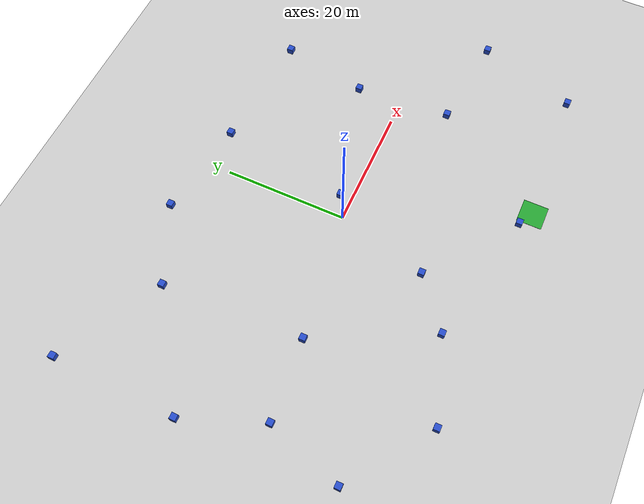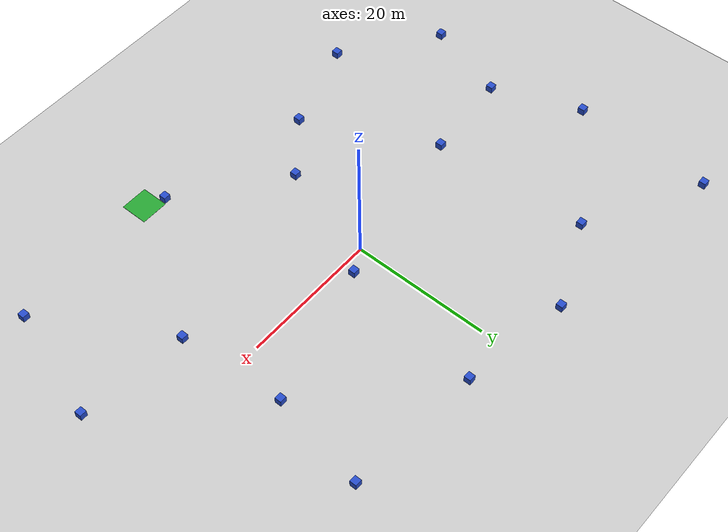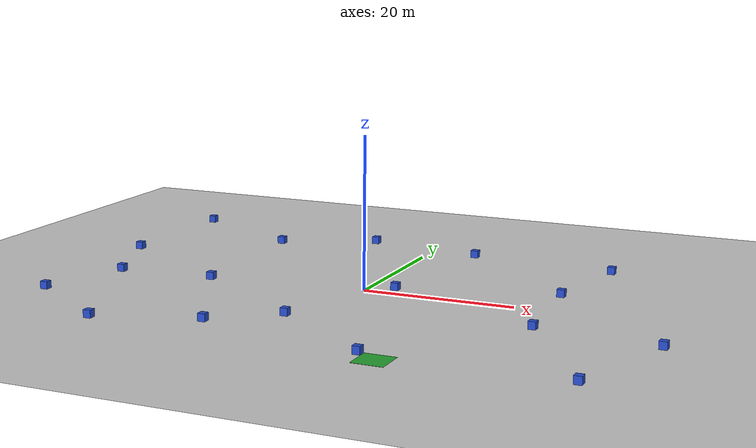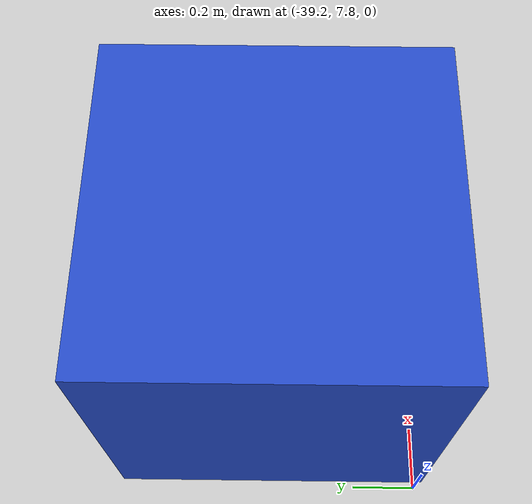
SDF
<sdf version="1.4">
 <world name="default">
  <include><uri>model://ground_plane</uri></include>
  <include><uri>model://sun</uri></include>
  <include><uri>model://platform</uri><name>platform</name><pose>13 -27 0 0 0 0</pose></include>
  <include><uri>model://basic_box</uri><pose>-38.16 28.54 0 0 0 0</pose><name>obstacle_1</name></include>
  <include><uri>model://basic_box</uri><pose>-38.68 8.27 0 0 0 0</pose><name>obstacle_2</name></include>
  <include><uri>model://basic_box</uri><pose>-37.6 -16.35 0 0 0 0</pose><name>obstacle_3</name></include>
  <include><uri>model://basic_box</uri><pose>-33.77 -4.23 0 0 0 0</pose><name>obstacle_4</name></include>
  <include><uri>model://basic_box</uri><pose>-24.82 -25.54 0 0 0 0</pose><name>obstacle_5</name></include>
  <include><uri>model://basic_box</uri><pose>-21.83 19.86 0 0 0 0</pose><name>obstacle_6</name></include>
  <include><uri>model://basic_box</uri><pose>-20.72 -3.03 0 0 0 0</pose><name>obstacle_7</name></include>
  <include><uri>model://basic_box</uri><pose>-11.63 -21.17 0 0 0 0</pose><name>obstacle_8</name></include>
  <include><uri>model://basic_box</uri><pose>-9.32 25.52 0 0 0 0</pose><name>obstacle_9</name></include>
  <include><uri>model://basic_box</uri><pose>-3.87 -14.86 0 0 0 0</pose><name>obstacle_10</name></include>
  <include><uri>model://basic_box</uri><pose>3.5 1.89 0 0 0 0</pose><name>obstacle_11</name></include>
  <include><uri>model://basic_box</uri><pose>6.67 23.2 0 0 0 0</pose><name>obstacle_12</name></include>
  <include><uri>model://basic_box</uri><pose>10.44 -25.58 0 0 0 0</pose><name>obstacle_13</name></include>
  <include><uri>model://basic_box</uri><pose>23.77 7.52 0 0 0 0</pose><name>obstacle_14</name></include>
  <include><uri>model://basic_box</uri><pose>26.46 21.76 0 0 0 0</pose><name>obstacle_15</name></include>
  <include><uri>model://basic_box</uri><pose>24.96 -7.97 0 0 0 0</pose><name>obstacle_16</name></include>
  <include><uri>model://basic_box</uri><pose>35.52 -25.59 0 0 0 0</pose><name>obstacle_17</name></include>
  <include><uri>model://basic_box</uri><pose>40.65 -9.57 0 0 0 0</pose><name>obstacle_18</name></include>
 </world>
</sdf>

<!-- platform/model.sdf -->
<sdf version="1.4">
  <model name="platform">
    <static>true</static>
    <link name="box">
      <visual name="visual_box">
        <pose>0 0 0.01 0 0 0</pose>
        <geometry>
          <box>
            <size>4 4 0.02</size>
          </box>
        </geometry>

        <material>
          <script>
            <uri>file://media/materials/scripts/gazebo.material</uri>
            <name>Gazebo/Green</name>
          </script>
        </material>
      </visual>
    </link>
  </model>
</sdf>

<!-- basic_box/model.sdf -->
<sdf version="1.4">
  <model name="box">
    <static>true</static>
    <link name="box">
      <visual name="visual_box">
        <pose>0 0 0.5 0 0 0</pose>
        <geometry>
          <box>
            <size>1 1 1</size>
          </box>
        </geometry>

        <material>
          <script>
            <uri>file://media/materials/scripts/gazebo.material</uri>
            <name>Gazebo/Blue</name>
          </script>
        </material>
      </visual>
      <collision name="collision_box">
        <pose>0 0 0.5 0 0 0</pose>
        <geometry>
          <box>
            <size>1 1 1</size>
          </box>
        </geometry>
      </collision>
    </link>
  </model>
</sdf>
